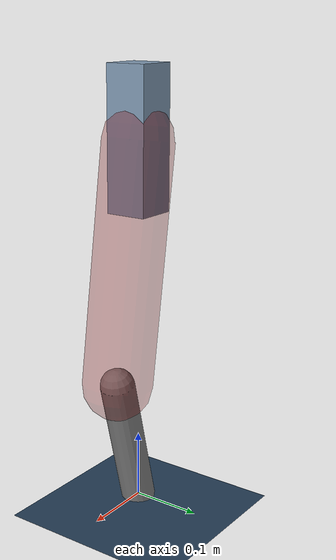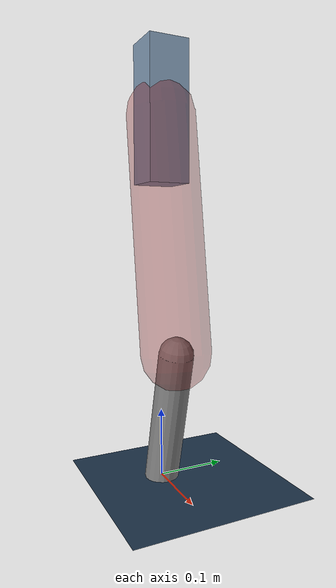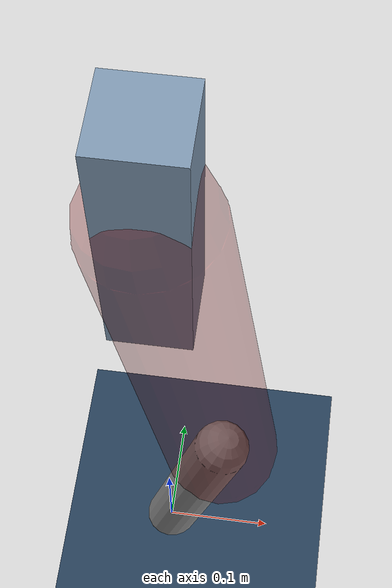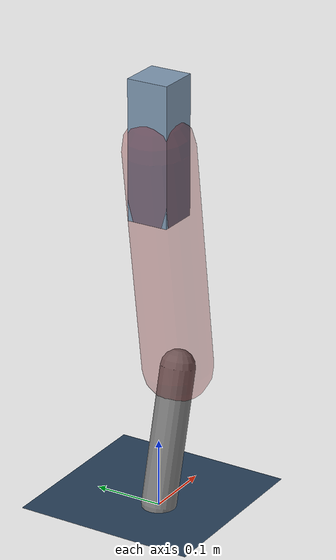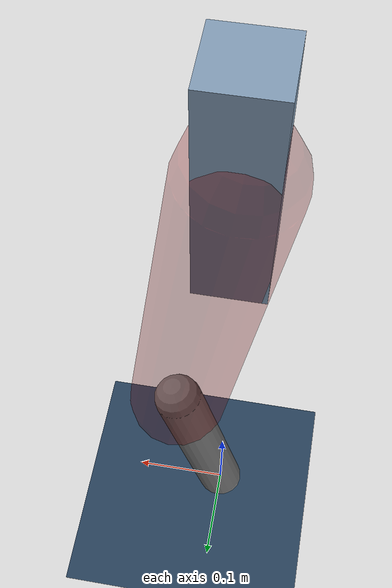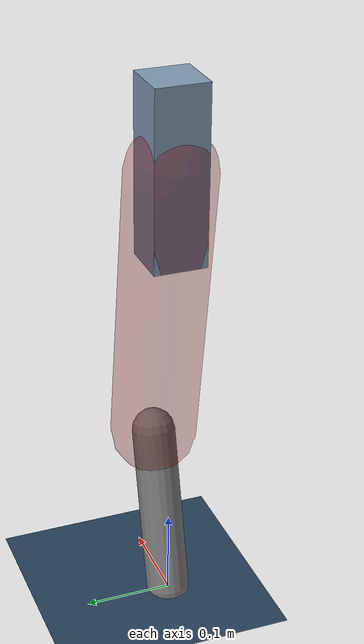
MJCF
<mujoco model="Hopper2D">
	<compiler inertiafromgeom="true" angle="radian" />
	<option timestep="0.001" integrator="implicit" cone="elliptic" solver="Newton" tolerance="1e-10" />

	<default>
		<geom contype="1" conaffinity="1" condim="3" friction="2 0.005 0.0001" solref="0.005 1" />
		<joint limited="true" damping="0.1" />
	</default>

	<asset>
		<texture name="skybox" type="skybox" builtin="gradient" rgb1=".4 .6 .8" rgb2="0 0 0" width="800" height="800" />
		<texture name="grid" type="2d" builtin="checker" rgb1=".1 .2 .3" rgb2=".2 .3 .4" width="300" height="300" mark="edge" markrgb=".2 .3 .4" />
		<material name="ground" texture="grid" texrepeat="1 1" texuniform="true" reflectance="0.1" />
		<material name="leg" rgba="0.5 0.6 0.7 1" />
	</asset>

	<worldbody>

		<geom name="floor" type="plane" size="5 5 0.25" material="ground" />

		<light directional="false" diffuse="0.8 0.8 0.8" specular="0.3 0.3 0.3" pos="0 0 2" dir="0 0 -1" />
		<light mode="targetbodycom" target="base" directional="false" diffuse="0.8 0.8 0.8" specular="0.3 0.3 0.3" pos="0 0 2" dir="0 0 -1" />

		<camera name="fixed" pos="0 -2 1" xyaxes="1 0 0 0 0 1" />
		<camera name="tracking" mode="trackcom" pos="0 -3 1" />

		<body name="root" pos="0 0 0.5333057343756071">
			<joint name="slide_x" type="slide" axis="1 0 0" range="-100 100" />
			<joint name="slide_z" type="slide" axis="0 0 1" range="0 10" />

			<body name="base" pos="0 0 0">
				<geom name="torso" type="box" size="0.03 0.03 0.1" mass="1.947" material="leg" />

				<body name="link1" pos="0 0 0" euler="0 1.4248143280154382 0">
					<joint type="hinge" axis="0 -1 0" pos="0 0 0" name="hinge1" limited="true" range="-3.14 3.14" stiffness="0" damping="0.1" />
					<geom name="thigh" type="capsule" fromto="0 0 0 0.34347181254735676 0 0" size="0.05" rgba="0.5 0 0 0.3" mass="1.108321075132599" />

					<body name="link2" pos="0.34347181254735676 0 0" euler="0 0.39868458944485463 0">
						<joint type="hinge" axis="0 -1 0" pos="0 0 0" name="hinge2" limited="true" range="-3.14 3.14" stiffness="0" damping="0.1" />
						<geom name="shank" type="capsule" fromto="0 0 0 0.19983392182825038 0 0" size="0.025" mass="0.4007671374626003" />

					</body>
				</body>
			</body>
		</body>
	</worldbody>

	<actuator>
		<motor name="torque1" joint="hinge1" ctrlrange="-90.3041403635925 90.3041403635925" ctrllimited="true" gear="1" />
		<motor name="torque2" joint="hinge2" ctrlrange="-16.876148271449235 16.876148271449235" ctrllimited="true" gear="1" />
	</actuator>
</mujoco>
